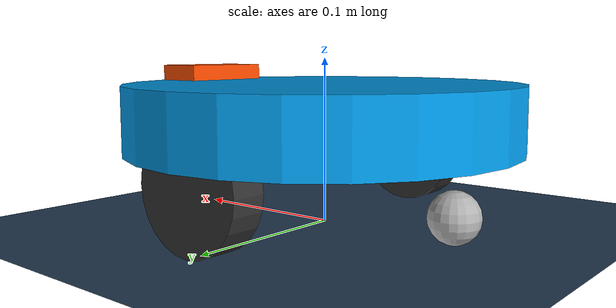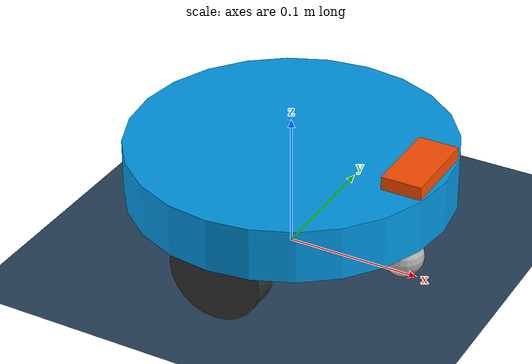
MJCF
<mujoco model="differential_drive">
  <statistic center="0 0 0.1" extent="1.2" meansize=".05"/>

  <visual>
    <headlight diffuse="0.6 0.6 0.6" ambient="0.3 0.3 0.3" specular="0 0 0"/>
    <rgba haze="0.15 0.25 0.35 1"/>
    <global azimuth="-20" elevation="-20" ellipsoidinertia="true"/>
  </visual>

  <asset>
    <texture type="skybox" builtin="gradient" rgb1="0.3 0.5 0.7" rgb2="0 0 0" width="512" height="3072"/>
    <texture type="2d" name="groundplane" builtin="checker" mark="edge" rgb1="0.2 0.3 0.4" rgb2="0.1 0.2 0.3"
      markrgb="0.8 0.8 0.8" width="300" height="300"/>
    <material name="groundplane" texture="groundplane" texuniform="true" texrepeat="5 5" reflectance="0.2"/>
  </asset>

  <!-- implicitfast keeps the stiff velocity servos on the light wheels stable. -->
  <option gravity="0 0 -9.81" timestep="0.002" integrator="implicitfast"/>

  <!-- Only the wheels and casters touch the ground; the rest of the robot is visual. -->
  <default>
    <geom contype="0" conaffinity="0"/>
    <default class="wheel">
      <geom type="cylinder" size="0.035 0.01" zaxis="0 1 0" contype="1" conaffinity="1" rgba="0.2 0.2 0.2 1"
        mass="0.1"/>
      <joint type="hinge" axis="0 1 0" damping="0.01" armature="0.0005"/>
    </default>
    <default class="caster">
      <!-- condim="1" makes the contact frictionless, so the ball acts as an ideal omnidirectional caster.
           priority="1" makes the caster's condim win over the floor's (default is the max of both). -->
      <geom type="sphere" size="0.015" condim="1" priority="1" contype="1" conaffinity="1" rgba="0.7 0.7 0.7 1" mass="0.02"/>
    </default>
  </default>

  <worldbody>
    <light pos="0 0 1.5" dir="0 0 -1" directional="true"/>
    <geom name="floor" size="0 0 0.05" type="plane" material="groundplane" contype="1" conaffinity="1"/>

    <body name="chassis" pos="0 0 0.035">
      <freejoint/>
      <geom name="base" type="cylinder" pos="0 0 0.03" size="0.12 0.02" rgba="0 0.6 0.9 1" mass="2"/>
      <geom name="nose" type="box" pos="0.1 0 0.055" size="0.015 0.03 0.005" rgba="1 0.3 0 1" mass="0"/>
      <geom name="caster_front" class="caster" pos="0.09 0 -0.02"/>
      <geom name="caster_rear" class="caster" pos="-0.09 0 -0.02"/>
      <site name="center" pos="0 0 0"/>

      <!-- Wheel separation b = 0.2 m, wheel radius r = 0.035 m. -->
      <body name="left_wheel" pos="0 0.1 0">
        <joint name="left_wheel" class="wheel"/>
        <geom name="left_wheel" class="wheel"/>
      </body>
      <body name="right_wheel" pos="0 -0.1 0">
        <joint name="right_wheel" class="wheel"/>
        <geom name="right_wheel" class="wheel"/>
      </body>
    </body>
  </worldbody>

  <sensor>
    <jointvel name="left_wheel_vel" joint="left_wheel"/>
    <jointvel name="right_wheel_vel" joint="right_wheel"/>
    <framepos name="chassis_pos" objtype="site" objname="center"/>
    <velocimeter name="chassis_linvel" site="center"/>
    <gyro name="chassis_angvel" site="center"/>
  </sensor>

  <!-- Wheel speed commands in rad/s (20 rad/s is 0.7 m/s at the rim). -->
  <actuator>
    <velocity name="left_wheel" joint="left_wheel" kv="0.5" ctrlrange="-20 20" forcerange="-2 2"/>
    <velocity name="right_wheel" joint="right_wheel" kv="0.5" ctrlrange="-20 20" forcerange="-2 2"/>
  </actuator>
</mujoco>
